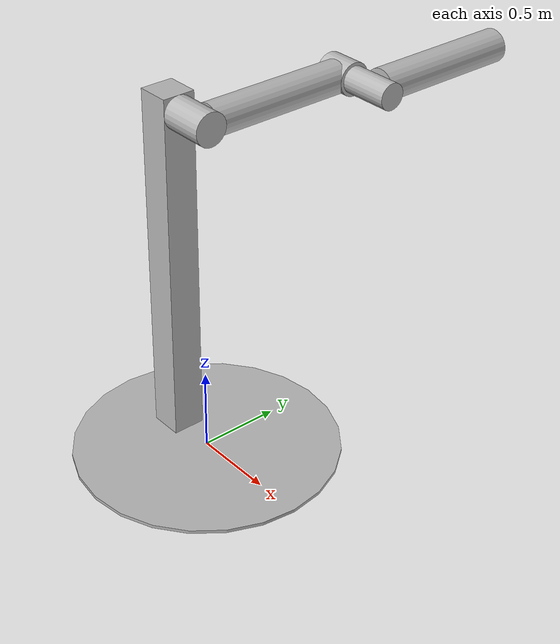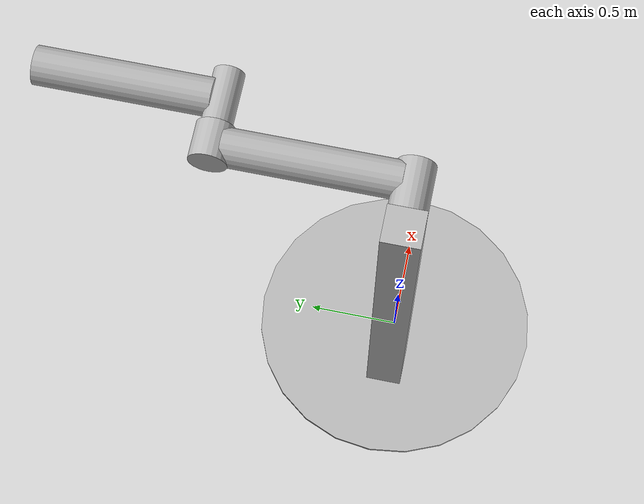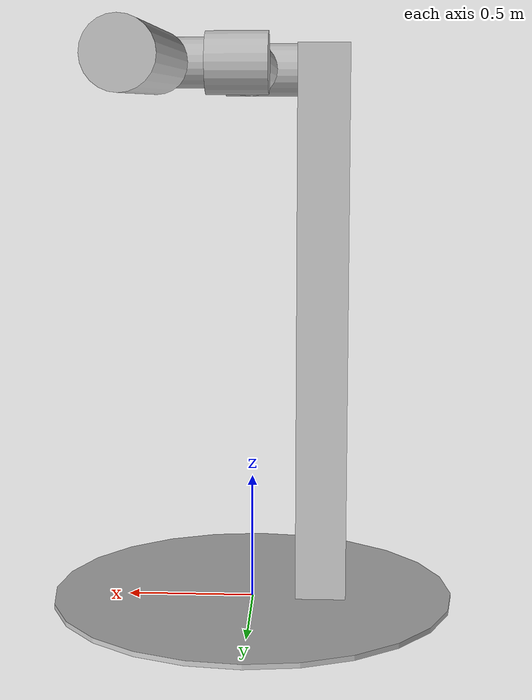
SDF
<?xml version='1.0'?>
<sdf version="1.4">
  <model name="double_pendulum">
    <link name="base">
      <inertial>
        <mass>1000</mass>
      </inertial>
      <visual name="vis_plate_on_ground">
        <pose>0 0 0.01  0 0 0</pose>
        <geometry>
          <cylinder>
            <radius>0.8</radius>
            <length>0.02</length>
          </cylinder>
        </geometry>
      </visual>
      <visual name="vis_pole">
        <pose>-0.275 0 1.1  0 0 0</pose>
        <geometry>
          <box><size>0.2 0.2 2.2</size></box>
        </geometry>
      </visual>
      <collision name="col_plate_on_ground">
        <pose>0 0 0.01  0 0 0</pose>
        <geometry>
          <cylinder>
            <radius>0.8</radius>
            <length>0.02</length>
          </cylinder>
        </geometry>
      </collision>
      <collision name="col_pole">
        <pose>-0.275 0 1.1  0 0 0</pose>
        <geometry>
          <box><size>0.2 0.2 2.2</size></box>
        </geometry>
      </collision>
    </link>
    <!-- upper link, length 1, IC -90 degrees -->
    <link name="upper_link">
      <pose>0 0 2.1  -1.5708 0 0</pose>
      <self_collide>0</self_collide>
      <inertial>
        <pose>0 0 0.5  0 0 0</pose>
      </inertial>
      <visual name="vis_upper_joint">
        <pose>-0.05 0 0  0 1.5708 0</pose>
        <geometry>
          <cylinder>
            <radius>0.1</radius>
            <length>0.3</length>
          </cylinder>
        </geometry>
      </visual>
      <visual name="vis_lower_joint">
        <pose>0 0 1.0  0 1.5708 0</pose>
        <geometry>
          <cylinder>
            <radius>0.1</radius>
            <length>0.2</length>
          </cylinder>
        </geometry>
      </visual>
      <visual name="vis_cylinder">
        <pose>0 0 0.5  0 0 0</pose>
        <geometry>
          <cylinder>
            <radius>0.1</radius>
            <length>0.9</length>
          </cylinder>
        </geometry>
      </visual>
      <collision name="col_upper_joint">
        <pose>-0.05 0 0  0 1.5708 0</pose>
        <geometry>
          <cylinder>
            <radius>0.1</radius>
            <length>0.3</length>
          </cylinder>
        </geometry>
      </collision>
      <collision name="col_lower_joint">
        <pose>0 0 1.0  0 1.5708 0</pose>
        <geometry>
          <cylinder>
            <radius>0.1</radius>
            <length>0.2</length>
          </cylinder>
        </geometry>
      </collision>
      <collision name="col_cylinder">
        <pose>0 0 0.5  0 0 0</pose>
        <geometry>
          <cylinder>
            <radius>0.1</radius>
            <length>0.9</length>
          </cylinder>
        </geometry>
      </collision>
    </link>
    <!-- lower link, length 1, IC ~-120 degrees more -->
    <link name="lower_link">
      <pose>0.25 1.0 2.1  -1.5708 0 0</pose>
      <self_collide>0</self_collide>
      <inertial>
        <pose>0 0 0.5  0 0 0</pose>
      </inertial>
      <visual name="vis_lower_joint">
        <pose>0 0 0  0 1.5708 0</pose>
        <geometry>
          <cylinder>
            <radius>0.08</radius>
            <length>0.3</length>
          </cylinder>
        </geometry>
      </visual>
      <visual name="vis_cylinder">
        <pose>0 0 0.5  0 0 0</pose>
        <geometry>
          <cylinder>
            <radius>0.1</radius>
            <length>0.9</length>
          </cylinder>
        </geometry>
      </visual>
      <collision name="col_lower_joint">
        <pose>0 0 0  0 1.5708 0</pose>
        <geometry>
          <cylinder>
            <radius>0.08</radius>
            <length>0.3</length>
          </cylinder>
        </geometry>
      </collision>
      <collision name="col_cylinder">
        <pose>0 0 0.5  0 0 0</pose>
        <geometry>
          <cylinder>
            <radius>0.1</radius>
            <length>0.9</length>
          </cylinder>
        </geometry>
      </collision>
    </link>
    <!-- pin joint for upper link, at origin of upper link -->
    <joint name="upper_joint" type="revolute">
      <parent>base</parent>
      <child>upper_link</child>
      <axis>
        <xyz>1.0 0 0</xyz>
      </axis>
    </joint>
    <!-- pin joint for lower link, at origin of child link -->
    <joint name="lower_joint" type="revolute">
      <parent>upper_link</parent>
      <child>lower_link</child>
      <axis>
        <xyz>1.0 0 0</xyz>
      </axis>
    </joint>

    <plugin name="controlboard" filename="libgazebo_yarp_controlboard.so">
        <yarpConfigurationFile>model://double_pendulum/conf/gazebo_controlboard.ini</yarpConfigurationFile>
        <initialConfiguration>0.0 0.0</initialConfiguration>
    </plugin>

  </model>
</sdf>
